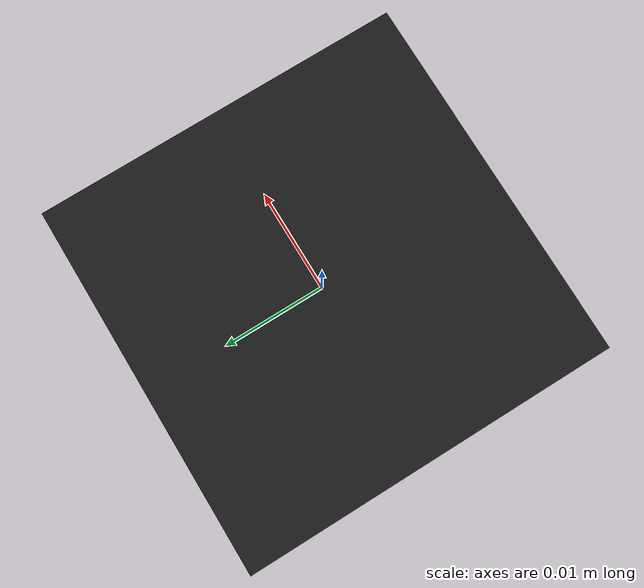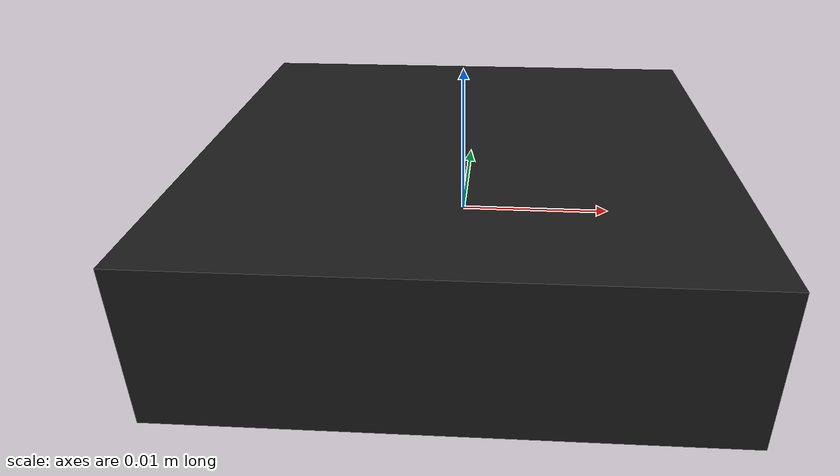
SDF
<?xml version="1.0" encoding="UTF-8"?>
<sdf version='1.9'>
  <model name='optical_flow'>
    <pose>0 0 0 0 0 0</pose>
    <self_collide>false</self_collide>
    <static>false</static>
    <link name="flow_link">
      <inertial>
        <pose>0 0 -0.005 0 0 0</pose>
        <mass>0.050</mass>
        <inertia>
          <ixx>0.00004</ixx>
          <ixy>0</ixy>
          <ixz>0</ixz>
          <iyy>0.00004</iyy>
          <iyz>0</iyz>
          <izz>0.00004</izz>
        </inertia>
      </inertial>
      <visual name="optical_flow/visual/housing">
        <geometry>
          <box>
            <size>0.034 0.034 0.01</size>
          </box>
        </geometry>
        <material>
          <ambient>0.1 0.1 0.1 1</ambient>
          <diffuse>0.1 0.1 0.1 1</diffuse>
          <specular>0.01 0.01 0.01 1</specular>
        </material>
      </visual>
      <visual name="optical_flow/visual/lens">
        <pose>0 0 -0.005 0 0 0</pose>
        <geometry>
          <cylinder>
            <radius>0.006</radius>
            <length>0.005</length>
          </cylinder>
        </geometry>
      </visual>
      <visual name="optical_flow/visual/lens_glass">
        <pose>0 0 -0.0075 0 0 0</pose>
        <geometry>
          <sphere>
            <radius>0.0059</radius>
          </sphere>
        </geometry>
        <material>
          <ambient>.4 .4 .5 .95</ambient>
          <diffuse>.4 .4 .5 .95</diffuse>
          <specular>1 1 1 1</specular>
          <emissive>0 0 0 1</emissive>
        </material>
      </visual>
      <sensor name="flow_camera" type="camera">
        <gz_frame_id>flow_link</gz_frame_id>
        <pose>0 0 0 0 1.5707 0</pose>
        <camera>
          <horizontal_fov>0.733038</horizontal_fov>
          <image>
            <width>100</width>
            <height>100</height>
          </image>
          <clip>
            <near>0.1</near>
            <far>30</far>
          </clip>
        </camera>
        <always_on>1</always_on>
        <update_rate>50</update_rate>
        <visualize>true</visualize>
      </sensor>
      <sensor name="optical_flow" type="custom" gz:type="optical_flow">
        <gz_frame_id>flow_link</gz_frame_id>
        <always_on>1</always_on>
        <update_rate>50</update_rate>
        <visualize>true</visualize>
      </sensor>
      <plugin filename="gz-sim-optical-flow-system"
          name="gz::sim::systems::OpticalFlow">
      </plugin>
    </link>
  </model>
</sdf>
